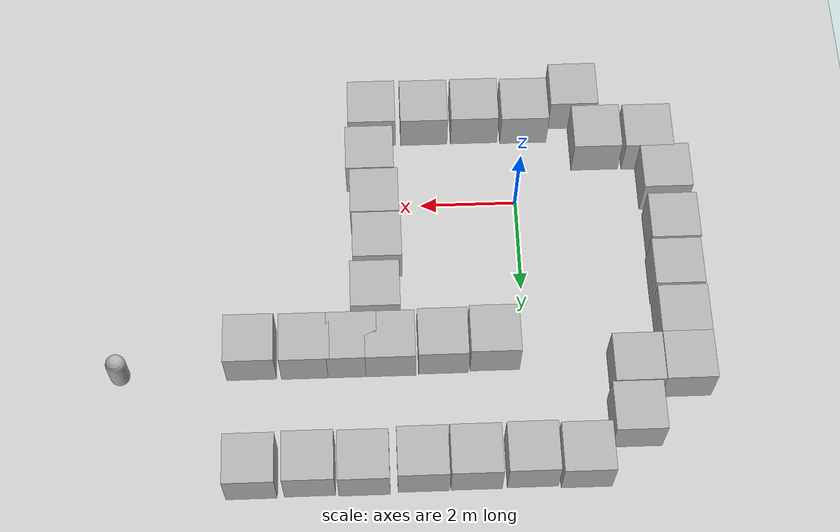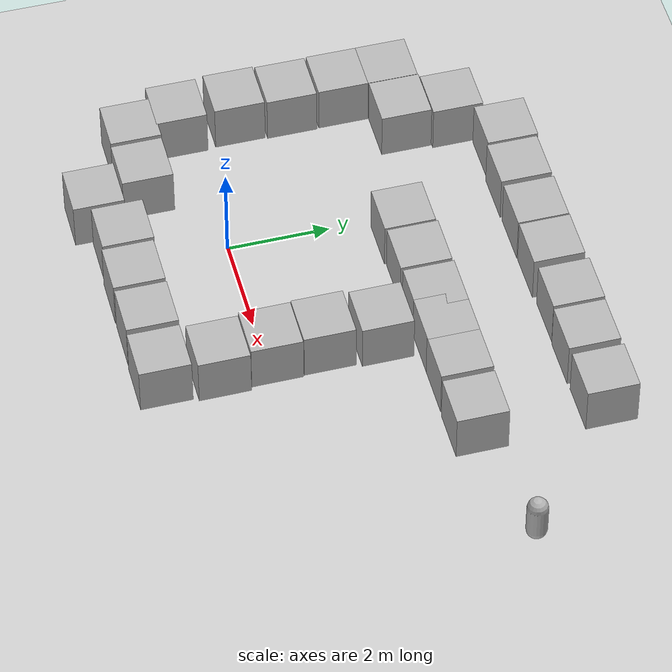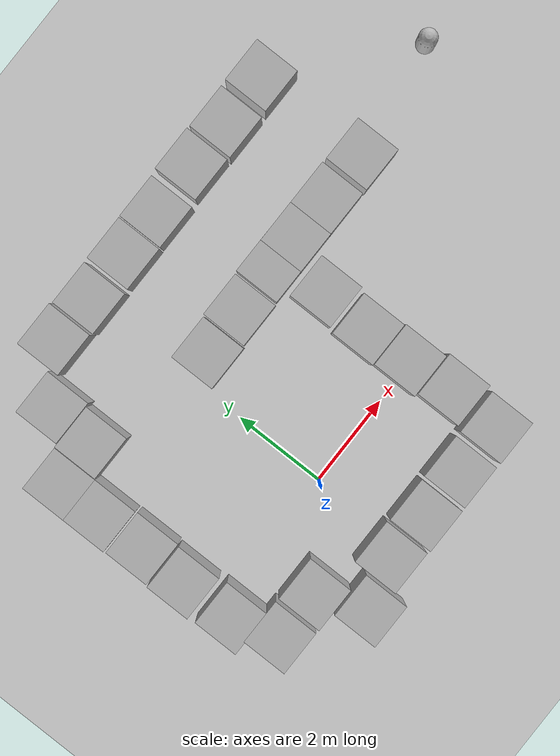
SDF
<sdf version='1.9'>
  <world name='empty'>
    <physics name='1ms' type='ignored'>
      <max_step_size>0.001</max_step_size>
      <real_time_factor>1</real_time_factor>
      <real_time_update_rate>1000</real_time_update_rate>
    </physics>
    <plugin name='gz::sim::systems::Physics' filename='ignition-gazebo-physics-system'/>
    <plugin name='gz::sim::systems::UserCommands' filename='ignition-gazebo-user-commands-system'/>
    <plugin name='gz::sim::systems::SceneBroadcaster' filename='ignition-gazebo-scene-broadcaster-system'/>
    <plugin name='gz::sim::systems::Contact' filename='ignition-gazebo-contact-system'/>
    <gravity>0 0 -9.8</gravity>
    <magnetic_field>6e-06 2.3e-05 -4.2e-05</magnetic_field>
    <atmosphere type='adiabatic'/>
    <scene>
      <ambient>0.4 0.4 0.4 1</ambient>
      <background>0.7 0.7 0.7 1</background>
      <shadows>true</shadows>
    </scene>
    <model name='ground_plane'>
      <static>true</static>
      <link name='link'>
        <collision name='collision'>
          <geometry>
            <plane>
              <normal>0 0 1</normal>
              <size>100 100</size>
            </plane>
          </geometry>
          <surface>
            <friction>
              <ode/>
            </friction>
            <bounce/>
            <contact/>
          </surface>
        </collision>
        <visual name='visual'>
          <geometry>
            <plane>
              <normal>0 0 1</normal>
              <size>100 100</size>
            </plane>
          </geometry>
          <material>
            <ambient>0.8 0.8 0.8 1</ambient>
            <diffuse>0.8 0.8 0.8 1</diffuse>
            <specular>0.8 0.8 0.8 1</specular>
          </material>
        </visual>
        <pose>0 0 0 0 -0 0</pose>
        <inertial>
          <pose>0 0 0 0 -0 0</pose>
          <mass>1</mass>
          <inertia>
            <ixx>1</ixx>
            <ixy>0</ixy>
            <ixz>0</ixz>
            <iyy>1</iyy>
            <iyz>0</iyz>
            <izz>1</izz>
          </inertia>
        </inertial>
        <enable_wind>false</enable_wind>
      </link>
      <pose>0 0 0 0 -0 0</pose>
      <self_collide>false</self_collide>
    </model>
    <model name='box'>
      <pose>4.44302 3.34276 0.5 0 -0 0</pose>
      <link name='box_link'>
        <inertial>
          <inertia>
            <ixx>0.16666</ixx>
            <ixy>0</ixy>
            <ixz>0</ixz>
            <iyy>0.16666</iyy>
            <iyz>0</iyz>
            <izz>0.16666</izz>
          </inertia>
          <mass>1</mass>
          <pose>0 0 0 0 -0 0</pose>
        </inertial>
        <collision name='box_collision'>
          <geometry>
            <box>
              <size>1 1 1</size>
            </box>
          </geometry>
          <surface>
            <friction>
              <ode/>
            </friction>
            <bounce/>
            <contact/>
          </surface>
        </collision>
        <visual name='box_visual'>
          <geometry>
            <box>
              <size>1 1 1</size>
            </box>
          </geometry>
          <material>
            <ambient>0.3 0.3 0.3 1</ambient>
            <diffuse>0.7 0.7 0.7 1</diffuse>
            <specular>1 1 1 1</specular>
          </material>
        </visual>
        <pose>0 0 0 0 -0 0</pose>
        <enable_wind>false</enable_wind>
      </link>
      <static>false</static>
      <self_collide>false</self_collide>
    </model>
    <model name='box_0'>
      <pose>3.50593 3.34317 0.5 0 -0 0</pose>
      <link name='box_link'>
        <inertial>
          <inertia>
            <ixx>0.16666</ixx>
            <ixy>0</ixy>
            <ixz>0</ixz>
            <iyy>0.16666</iyy>
            <iyz>0</iyz>
            <izz>0.16666</izz>
          </inertia>
          <mass>1</mass>
          <pose>0 0 0 0 -0 0</pose>
        </inertial>
        <collision name='box_collision'>
          <geometry>
            <box>
              <size>1 1 1</size>
            </box>
          </geometry>
          <surface>
            <friction>
              <ode/>
            </friction>
            <bounce/>
            <contact/>
          </surface>
        </collision>
        <visual name='box_visual'>
          <geometry>
            <box>
              <size>1 1 1</size>
            </box>
          </geometry>
          <material>
            <ambient>0.3 0.3 0.3 1</ambient>
            <diffuse>0.7 0.7 0.7 1</diffuse>
            <specular>1 1 1 1</specular>
          </material>
        </visual>
        <pose>0 0 0 0 -0 0</pose>
        <enable_wind>false</enable_wind>
      </link>
      <static>false</static>
      <self_collide>false</self_collide>
    </model>
    <model name='box_1'>
      <pose>2.74325 3.3445 0.5 0 -0 0</pose>
      <link name='box_link'>
        <inertial>
          <inertia>
            <ixx>0.16666</ixx>
            <ixy>0</ixy>
            <ixz>0</ixz>
            <iyy>0.16666</iyy>
            <iyz>0</iyz>
            <izz>0.16666</izz>
          </inertia>
          <mass>1</mass>
          <pose>0 0 0 0 -0 0</pose>
        </inertial>
        <collision name='box_collision'>
          <geometry>
            <box>
              <size>1 1 1</size>
            </box>
          </geometry>
          <surface>
            <friction>
              <ode/>
            </friction>
            <bounce/>
            <contact/>
          </surface>
        </collision>
        <visual name='box_visual'>
          <geometry>
            <box>
              <size>1 1 1</size>
            </box>
          </geometry>
          <material>
            <ambient>0.3 0.3 0.3 1</ambient>
            <diffuse>0.7 0.7 0.7 1</diffuse>
            <specular>1 1 1 1</specular>
          </material>
        </visual>
        <pose>0 0 0 0 -0 0</pose>
        <enable_wind>false</enable_wind>
      </link>
      <static>false</static>
      <self_collide>false</self_collide>
    </model>
    <model name='box_2'>
      <pose>1.6874 3.3226 0.5 0 -0 0</pose>
      <link name='box_link'>
        <inertial>
          <inertia>
            <ixx>0.16666</ixx>
            <ixy>0</ixy>
            <ixz>0</ixz>
            <iyy>0.16666</iyy>
            <iyz>0</iyz>
            <izz>0.16666</izz>
          </inertia>
          <mass>1</mass>
          <pose>0 0 0 0 -0 0</pose>
        </inertial>
        <collision name='box_collision'>
          <geometry>
            <box>
              <size>1 1 1</size>
            </box>
          </geometry>
          <surface>
            <friction>
              <ode/>
            </friction>
            <bounce/>
            <contact/>
          </surface>
        </collision>
        <visual name='box_visual'>
          <geometry>
            <box>
              <size>1 1 1</size>
            </box>
          </geometry>
          <material>
            <ambient>0.3 0.3 0.3 1</ambient>
            <diffuse>0.7 0.7 0.7 1</diffuse>
            <specular>1 1 1 1</specular>
          </material>
        </visual>
        <pose>0 0 0 0 -0 0</pose>
        <enable_wind>false</enable_wind>
      </link>
      <static>false</static>
      <self_collide>false</self_collide>
    </model>
    <model name='box_3'>
      <pose>0.649143 3.2912 0.5 0 -0 0</pose>
      <link name='box_link'>
        <inertial>
          <inertia>
            <ixx>0.16666</ixx>
            <ixy>0</ixy>
            <ixz>0</ixz>
            <iyy>0.16666</iyy>
            <iyz>0</iyz>
            <izz>0.16666</izz>
          </inertia>
          <mass>1</mass>
          <pose>0 0 0 0 -0 0</pose>
        </inertial>
        <collision name='box_collision'>
          <geometry>
            <box>
              <size>1 1 1</size>
            </box>
          </geometry>
          <surface>
            <friction>
              <ode/>
            </friction>
            <bounce/>
            <contact/>
          </surface>
        </collision>
        <visual name='box_visual'>
          <geometry>
            <box>
              <size>1 1 1</size>
            </box>
          </geometry>
          <material>
            <ambient>0.3 0.3 0.3 1</ambient>
            <diffuse>0.7 0.7 0.7 1</diffuse>
            <specular>1 1 1 1</specular>
          </material>
        </visual>
        <pose>0 0 0 0 -0 0</pose>
        <enable_wind>false</enable_wind>
      </link>
      <static>false</static>
      <self_collide>false</self_collide>
    </model>
    <model name='box_4'>
      <pose>-1.74437 -1.25826 0.5 0 -0 0</pose>
      <link name='box_link'>
        <inertial>
          <inertia>
            <ixx>0.16666</ixx>
            <ixy>0</ixy>
            <ixz>0</ixz>
            <iyy>0.16666</iyy>
            <iyz>0</iyz>
            <izz>0.16666</izz>
          </inertia>
          <mass>1</mass>
          <pose>0 0 0 0 -0 0</pose>
        </inertial>
        <collision name='box_collision'>
          <geometry>
            <box>
              <size>1 1 1</size>
            </box>
          </geometry>
          <surface>
            <friction>
              <ode/>
            </friction>
            <bounce/>
            <contact/>
          </surface>
        </collision>
        <visual name='box_visual'>
          <geometry>
            <box>
              <size>1 1 1</size>
            </box>
          </geometry>
          <material>
            <ambient>0.3 0.3 0.3 1</ambient>
            <diffuse>0.7 0.7 0.7 1</diffuse>
            <specular>1 1 1 1</specular>
          </material>
        </visual>
        <pose>0 0 0 0 -0 0</pose>
        <enable_wind>false</enable_wind>
      </link>
      <static>false</static>
      <self_collide>false</self_collide>
    </model>
    <model name='box_5'>
      <pose>-2.81881 -1.2439 0.5 0 -0 0</pose>
      <link name='box_link'>
        <inertial>
          <inertia>
            <ixx>0.16666</ixx>
            <ixy>0</ixy>
            <ixz>0</ixz>
            <iyy>0.16666</iyy>
            <iyz>0</iyz>
            <izz>0.16666</izz>
          </inertia>
          <mass>1</mass>
          <pose>0 0 0 0 -0 0</pose>
        </inertial>
        <collision name='box_collision'>
          <geometry>
            <box>
              <size>1 1 1</size>
            </box>
          </geometry>
          <surface>
            <friction>
              <ode/>
            </friction>
            <bounce/>
            <contact/>
          </surface>
        </collision>
        <visual name='box_visual'>
          <geometry>
            <box>
              <size>1 1 1</size>
            </box>
          </geometry>
          <material>
            <ambient>0.3 0.3 0.3 1</ambient>
            <diffuse>0.7 0.7 0.7 1</diffuse>
            <specular>1 1 1 1</specular>
          </material>
        </visual>
        <pose>0 0 0 0 -0 0</pose>
        <enable_wind>false</enable_wind>
      </link>
      <static>false</static>
      <self_collide>false</self_collide>
    </model>
    <model name='box_6'>
      <pose>3.01104 2.22576 0.5 0 -0 0</pose>
      <link name='box_link'>
        <inertial>
          <inertia>
            <ixx>0.16666</ixx>
            <ixy>0</ixy>
            <ixz>0</ixz>
            <iyy>0.16666</iyy>
            <iyz>0</iyz>
            <izz>0.16666</izz>
          </inertia>
          <mass>1</mass>
          <pose>0 0 0 0 -0 0</pose>
        </inertial>
        <collision name='box_collision'>
          <geometry>
            <box>
              <size>1 1 1</size>
            </box>
          </geometry>
          <surface>
            <friction>
              <ode/>
            </friction>
            <bounce/>
            <contact/>
          </surface>
        </collision>
        <visual name='box_visual'>
          <geometry>
            <box>
              <size>1 1 1</size>
            </box>
          </geometry>
          <material>
            <ambient>0.3 0.3 0.3 1</ambient>
            <diffuse>0.7 0.7 0.7 1</diffuse>
            <specular>1 1 1 1</specular>
          </material>
        </visual>
        <pose>0 0 0 0 -0 0</pose>
        <enable_wind>false</enable_wind>
      </link>
      <static>false</static>
      <self_collide>false</self_collide>
    </model>
    <model name='box_7'>
      <pose>2.94721 1.12499 0.5 0 -0 0</pose>
      <link name='box_link'>
        <inertial>
          <inertia>
            <ixx>0.16666</ixx>
            <ixy>0</ixy>
            <ixz>0</ixz>
            <iyy>0.16666</iyy>
            <iyz>0</iyz>
            <izz>0.16666</izz>
          </inertia>
          <mass>1</mass>
          <pose>0 0 0 0 -0 0</pose>
        </inertial>
        <collision name='box_collision'>
          <geometry>
            <box>
              <size>1 1 1</size>
            </box>
          </geometry>
          <surface>
            <friction>
              <ode/>
            </friction>
            <bounce/>
            <contact/>
          </surface>
        </collision>
        <visual name='box_visual'>
          <geometry>
            <box>
              <size>1 1 1</size>
            </box>
          </geometry>
          <material>
            <ambient>0.3 0.3 0.3 1</ambient>
            <diffuse>0.7 0.7 0.7 1</diffuse>
            <specular>1 1 1 1</specular>
          </material>
        </visual>
        <pose>0 0 0 0 -0 0</pose>
        <enable_wind>false</enable_wind>
      </link>
      <static>false</static>
      <self_collide>false</self_collide>
    </model>
    <model name='box_8'>
      <pose>2.97711 0.109561 0.5 0 -0 0</pose>
      <link name='box_link'>
        <inertial>
          <inertia>
            <ixx>0.16666</ixx>
            <ixy>0</ixy>
            <ixz>0</ixz>
            <iyy>0.16666</iyy>
            <iyz>0</iyz>
            <izz>0.16666</izz>
          </inertia>
          <mass>1</mass>
          <pose>0 0 0 0 -0 0</pose>
        </inertial>
        <collision name='box_collision'>
          <geometry>
            <box>
              <size>1 1 1</size>
            </box>
          </geometry>
          <surface>
            <friction>
              <ode/>
            </friction>
            <bounce/>
            <contact/>
          </surface>
        </collision>
        <visual name='box_visual'>
          <geometry>
            <box>
              <size>1 1 1</size>
            </box>
          </geometry>
          <material>
            <ambient>0.3 0.3 0.3 1</ambient>
            <diffuse>0.7 0.7 0.7 1</diffuse>
            <specular>1 1 1 1</specular>
          </material>
        </visual>
        <pose>0 0 0 0 -0 0</pose>
        <enable_wind>false</enable_wind>
      </link>
      <static>false</static>
      <self_collide>false</self_collide>
    </model>
    <model name='box_9'>
      <pose>3.05324 -0.911578 0.5 0 -0 0</pose>
      <link name='box_link'>
        <inertial>
          <inertia>
            <ixx>0.16666</ixx>
            <ixy>0</ixy>
            <ixz>0</ixz>
            <iyy>0.16666</iyy>
            <iyz>0</iyz>
            <izz>0.16666</izz>
          </inertia>
          <mass>1</mass>
          <pose>0 0 0 0 -0 0</pose>
        </inertial>
        <collision name='box_collision'>
          <geometry>
            <box>
              <size>1 1 1</size>
            </box>
          </geometry>
          <surface>
            <friction>
              <ode/>
            </friction>
            <bounce/>
            <contact/>
          </surface>
        </collision>
        <visual name='box_visual'>
          <geometry>
            <box>
              <size>1 1 1</size>
            </box>
          </geometry>
          <material>
            <ambient>0.3 0.3 0.3 1</ambient>
            <diffuse>0.7 0.7 0.7 1</diffuse>
            <specular>1 1 1 1</specular>
          </material>
        </visual>
        <pose>0 0 0 0 -0 0</pose>
        <enable_wind>false</enable_wind>
      </link>
      <static>false</static>
      <self_collide>false</self_collide>
    </model>
    <model name='box_10'>
      <pose>2.9895 -2.01103 0.5 0 -0 0</pose>
      <link name='box_link'>
        <inertial>
          <inertia>
            <ixx>0.16666</ixx>
            <ixy>0</ixy>
            <ixz>0</ixz>
            <iyy>0.16666</iyy>
            <iyz>0</iyz>
            <izz>0.16666</izz>
          </inertia>
          <mass>1</mass>
          <pose>0 0 0 0 -0 0</pose>
        </inertial>
        <collision name='box_collision'>
          <geometry>
            <box>
              <size>1 1 1</size>
            </box>
          </geometry>
          <surface>
            <friction>
              <ode/>
            </friction>
            <bounce/>
            <contact/>
          </surface>
        </collision>
        <visual name='box_visual'>
          <geometry>
            <box>
              <size>1 1 1</size>
            </box>
          </geometry>
          <material>
            <ambient>0.3 0.3 0.3 1</ambient>
            <diffuse>0.7 0.7 0.7 1</diffuse>
            <specular>1 1 1 1</specular>
          </material>
        </visual>
        <pose>0 0 0 0 -0 0</pose>
        <enable_wind>false</enable_wind>
      </link>
      <static>false</static>
      <self_collide>false</self_collide>
    </model>
    <model name='box_11'>
      <pose>1.88003 -1.99715 0.5 0 -0 0</pose>
      <link name='box_link'>
        <inertial>
          <inertia>
            <ixx>0.16666</ixx>
            <ixy>0</ixy>
            <ixz>0</ixz>
            <iyy>0.16666</iyy>
            <iyz>0</iyz>
            <izz>0.16666</izz>
          </inertia>
          <mass>1</mass>
          <pose>0 0 0 0 -0 0</pose>
        </inertial>
        <collision name='box_collision'>
          <geometry>
            <box>
              <size>1 1 1</size>
            </box>
          </geometry>
          <surface>
            <friction>
              <ode/>
            </friction>
            <bounce/>
            <contact/>
          </surface>
        </collision>
        <visual name='box_visual'>
          <geometry>
            <box>
              <size>1 1 1</size>
            </box>
          </geometry>
          <material>
            <ambient>0.3 0.3 0.3 1</ambient>
            <diffuse>0.7 0.7 0.7 1</diffuse>
            <specular>1 1 1 1</specular>
          </material>
        </visual>
        <pose>0 0 0 0 -0 0</pose>
        <enable_wind>false</enable_wind>
      </link>
      <static>false</static>
      <self_collide>false</self_collide>
    </model>
    <model name='box_12'>
      <pose>0.803579 -2.0008 0.5 0 -0 0</pose>
      <link name='box_link'>
        <inertial>
          <inertia>
            <ixx>0.16666</ixx>
            <ixy>0</ixy>
            <ixz>0</ixz>
            <iyy>0.16666</iyy>
            <iyz>0</iyz>
            <izz>0.16666</izz>
          </inertia>
          <mass>1</mass>
          <pose>0 0 0 0 -0 0</pose>
        </inertial>
        <collision name='box_collision'>
          <geometry>
            <box>
              <size>1 1 1</size>
            </box>
          </geometry>
          <surface>
            <friction>
              <ode/>
            </friction>
            <bounce/>
            <contact/>
          </surface>
        </collision>
        <visual name='box_visual'>
          <geometry>
            <box>
              <size>1 1 1</size>
            </box>
          </geometry>
          <material>
            <ambient>0.3 0.3 0.3 1</ambient>
            <diffuse>0.7 0.7 0.7 1</diffuse>
            <specular>1 1 1 1</specular>
          </material>
        </visual>
        <pose>0 0 0 0 -0 0</pose>
        <enable_wind>false</enable_wind>
      </link>
      <static>false</static>
      <self_collide>false</self_collide>
    </model>
    <model name='box_13'>
      <pose>-0.258873 -1.97304 0.5 0 -0 0</pose>
      <link name='box_link'>
        <inertial>
          <inertia>
            <ixx>0.16666</ixx>
            <ixy>0</ixy>
            <ixz>0</ixz>
            <iyy>0.16666</iyy>
            <iyz>0</iyz>
            <izz>0.16666</izz>
          </inertia>
          <mass>1</mass>
          <pose>0 0 0 0 -0 0</pose>
        </inertial>
        <collision name='box_collision'>
          <geometry>
            <box>
              <size>1 1 1</size>
            </box>
          </geometry>
          <surface>
            <friction>
              <ode/>
            </friction>
            <bounce/>
            <contact/>
          </surface>
        </collision>
        <visual name='box_visual'>
          <geometry>
            <box>
              <size>1 1 1</size>
            </box>
          </geometry>
          <material>
            <ambient>0.3 0.3 0.3 1</ambient>
            <diffuse>0.7 0.7 0.7 1</diffuse>
            <specular>1 1 1 1</specular>
          </material>
        </visual>
        <pose>0 0 0 0 -0 0</pose>
        <enable_wind>false</enable_wind>
      </link>
      <static>false</static>
      <self_collide>false</self_collide>
    </model>
    <model name='box_14'>
      <pose>-1.32229 -2.30679 0.5 0 -0 0</pose>
      <link name='box_link'>
        <inertial>
          <inertia>
            <ixx>0.16666</ixx>
            <ixy>0</ixy>
            <ixz>0</ixz>
            <iyy>0.16666</iyy>
            <iyz>0</iyz>
            <izz>0.16666</izz>
          </inertia>
          <mass>1</mass>
          <pose>0 0 0 0 -0 0</pose>
        </inertial>
        <collision name='box_collision'>
          <geometry>
            <box>
              <size>1 1 1</size>
            </box>
          </geometry>
          <surface>
            <friction>
              <ode/>
            </friction>
            <bounce/>
            <contact/>
          </surface>
        </collision>
        <visual name='box_visual'>
          <geometry>
            <box>
              <size>1 1 1</size>
            </box>
          </geometry>
          <material>
            <ambient>0.3 0.3 0.3 1</ambient>
            <diffuse>0.7 0.7 0.7 1</diffuse>
            <specular>1 1 1 1</specular>
          </material>
        </visual>
        <pose>0 0 0 0 -0 0</pose>
        <enable_wind>false</enable_wind>
      </link>
      <static>false</static>
      <self_collide>false</self_collide>
    </model>
    <model name='box_15'>
      <pose>5.54159 3.33034 0.5 0 -0 0</pose>
      <link name='box_link'>
        <inertial>
          <inertia>
            <ixx>0.16666</ixx>
            <ixy>0</ixy>
            <ixz>0</ixz>
            <iyy>0.16666</iyy>
            <iyz>0</iyz>
            <izz>0.16666</izz>
          </inertia>
          <mass>1</mass>
          <pose>0 0 0 0 -0 0</pose>
        </inertial>
        <collision name='box_collision'>
          <geometry>
            <box>
              <size>1 1 1</size>
            </box>
          </geometry>
          <surface>
            <friction>
              <ode/>
            </friction>
            <bounce/>
            <contact/>
          </surface>
        </collision>
        <visual name='box_visual'>
          <geometry>
            <box>
              <size>1 1 1</size>
            </box>
          </geometry>
          <material>
            <ambient>0.3 0.3 0.3 1</ambient>
            <diffuse>0.7 0.7 0.7 1</diffuse>
            <specular>1 1 1 1</specular>
          </material>
        </visual>
        <pose>0 0 0 0 -0 0</pose>
        <enable_wind>false</enable_wind>
      </link>
      <static>false</static>
      <self_collide>false</self_collide>
    </model>
    <model name='box_16'>
      <pose>5.52273 5.81768 0.5 0 -0 0</pose>
      <link name='box_link'>
        <inertial>
          <inertia>
            <ixx>0.16666</ixx>
            <ixy>0</ixy>
            <ixz>0</ixz>
            <iyy>0.16666</iyy>
            <iyz>0</iyz>
            <izz>0.16666</izz>
          </inertia>
          <mass>1</mass>
          <pose>0 0 0 0 -0 0</pose>
        </inertial>
        <collision name='box_collision'>
          <geometry>
            <box>
              <size>1 1 1</size>
            </box>
          </geometry>
          <surface>
            <friction>
              <ode/>
            </friction>
            <bounce/>
            <contact/>
          </surface>
        </collision>
        <visual name='box_visual'>
          <geometry>
            <box>
              <size>1 1 1</size>
            </box>
          </geometry>
          <material>
            <ambient>0.3 0.3 0.3 1</ambient>
            <diffuse>0.7 0.7 0.7 1</diffuse>
            <specular>1 1 1 1</specular>
          </material>
        </visual>
        <pose>0 0 0 0 -0 0</pose>
        <enable_wind>false</enable_wind>
      </link>
      <static>false</static>
      <self_collide>false</self_collide>
    </model>
    <model name='box_17'>
      <pose>4.38616 5.80213 0.5 0 -0 0</pose>
      <link name='box_link'>
        <inertial>
          <inertia>
            <ixx>0.16666</ixx>
            <ixy>0</ixy>
            <ixz>0</ixz>
            <iyy>0.16666</iyy>
            <iyz>0</iyz>
            <izz>0.16666</izz>
          </inertia>
          <mass>1</mass>
          <pose>0 0 0 0 -0 0</pose>
        </inertial>
        <collision name='box_collision'>
          <geometry>
            <box>
              <size>1 1 1</size>
            </box>
          </geometry>
          <surface>
            <friction>
              <ode/>
            </friction>
            <bounce/>
            <contact/>
          </surface>
        </collision>
        <visual name='box_visual'>
          <geometry>
            <box>
              <size>1 1 1</size>
            </box>
          </geometry>
          <material>
            <ambient>0.3 0.3 0.3 1</ambient>
            <diffuse>0.7 0.7 0.7 1</diffuse>
            <specular>1 1 1 1</specular>
          </material>
        </visual>
        <pose>0 0 0 0 -0 0</pose>
        <enable_wind>false</enable_wind>
      </link>
      <static>false</static>
      <self_collide>false</self_collide>
    </model>
    <model name='box_18'>
      <pose>3.32717 5.81868 0.5 0 -0 0</pose>
      <link name='box_link'>
        <inertial>
          <inertia>
            <ixx>0.16666</ixx>
            <ixy>0</ixy>
            <ixz>0</ixz>
            <iyy>0.16666</iyy>
            <iyz>0</iyz>
            <izz>0.16666</izz>
          </inertia>
          <mass>1</mass>
          <pose>0 0 0 0 -0 0</pose>
        </inertial>
        <collision name='box_collision'>
          <geometry>
            <box>
              <size>1 1 1</size>
            </box>
          </geometry>
          <surface>
            <friction>
              <ode/>
            </friction>
            <bounce/>
            <contact/>
          </surface>
        </collision>
        <visual name='box_visual'>
          <geometry>
            <box>
              <size>1 1 1</size>
            </box>
          </geometry>
          <material>
            <ambient>0.3 0.3 0.3 1</ambient>
            <diffuse>0.7 0.7 0.7 1</diffuse>
            <specular>1 1 1 1</specular>
          </material>
        </visual>
        <pose>0 0 0 0 -0 0</pose>
        <enable_wind>false</enable_wind>
      </link>
      <static>false</static>
      <self_collide>false</self_collide>
    </model>
    <model name='box_19'>
      <pose>2.17586 5.78238 0.5 0 -0 0</pose>
      <link name='box_link'>
        <inertial>
          <inertia>
            <ixx>0.16666</ixx>
            <ixy>0</ixy>
            <ixz>0</ixz>
            <iyy>0.16666</iyy>
            <iyz>0</iyz>
            <izz>0.16666</izz>
          </inertia>
          <mass>1</mass>
          <pose>0 0 0 0 -0 0</pose>
        </inertial>
        <collision name='box_collision'>
          <geometry>
            <box>
              <size>1 1 1</size>
            </box>
          </geometry>
          <surface>
            <friction>
              <ode/>
            </friction>
            <bounce/>
            <contact/>
          </surface>
        </collision>
        <visual name='box_visual'>
          <geometry>
            <box>
              <size>1 1 1</size>
            </box>
          </geometry>
          <material>
            <ambient>0.3 0.3 0.3 1</ambient>
            <diffuse>0.7 0.7 0.7 1</diffuse>
            <specular>1 1 1 1</specular>
          </material>
        </visual>
        <pose>0 0 0 0 -0 0</pose>
        <enable_wind>false</enable_wind>
      </link>
      <static>false</static>
      <self_collide>false</self_collide>
    </model>
    <model name='box_20'>
      <pose>1.14526 5.7754 0.5 0 -0 0</pose>
      <link name='box_link'>
        <inertial>
          <inertia>
            <ixx>0.16666</ixx>
            <ixy>0</ixy>
            <ixz>0</ixz>
            <iyy>0.16666</iyy>
            <iyz>0</iyz>
            <izz>0.16666</izz>
          </inertia>
          <mass>1</mass>
          <pose>0 0 0 0 -0 0</pose>
        </inertial>
        <collision name='box_collision'>
          <geometry>
            <box>
              <size>1 1 1</size>
            </box>
          </geometry>
          <surface>
            <friction>
              <ode/>
            </friction>
            <bounce/>
            <contact/>
          </surface>
        </collision>
        <visual name='box_visual'>
          <geometry>
            <box>
              <size>1 1 1</size>
            </box>
          </geometry>
          <material>
            <ambient>0.3 0.3 0.3 1</ambient>
            <diffuse>0.7 0.7 0.7 1</diffuse>
            <specular>1 1 1 1</specular>
          </material>
        </visual>
        <pose>0 0 0 0 -0 0</pose>
        <enable_wind>false</enable_wind>
      </link>
      <static>false</static>
      <self_collide>false</self_collide>
    </model>
    <model name='box_21'>
      <pose>0.046961 5.76244 0.5 0 -0 0</pose>
      <link name='box_link'>
        <inertial>
          <inertia>
            <ixx>0.16666</ixx>
            <ixy>0</ixy>
            <ixz>0</ixz>
            <iyy>0.16666</iyy>
            <iyz>0</iyz>
            <izz>0.16666</izz>
          </inertia>
          <mass>1</mass>
          <pose>0 0 0 0 -0 0</pose>
        </inertial>
        <collision name='box_collision'>
          <geometry>
            <box>
              <size>1 1 1</size>
            </box>
          </geometry>
          <surface>
            <friction>
              <ode/>
            </friction>
            <bounce/>
            <contact/>
          </surface>
        </collision>
        <visual name='box_visual'>
          <geometry>
            <box>
              <size>1 1 1</size>
            </box>
          </geometry>
          <material>
            <ambient>0.3 0.3 0.3 1</ambient>
            <diffuse>0.7 0.7 0.7 1</diffuse>
            <specular>1 1 1 1</specular>
          </material>
        </visual>
        <pose>0 0 0 0 -0 0</pose>
        <enable_wind>false</enable_wind>
      </link>
      <static>false</static>
      <self_collide>false</self_collide>
    </model>
    <model name='box_22'>
      <pose>-1.00155 5.80051 0.5 0 -0 0</pose>
      <link name='box_link'>
        <inertial>
          <inertia>
            <ixx>0.16666</ixx>
            <ixy>0</ixy>
            <ixz>0</ixz>
            <iyy>0.16666</iyy>
            <iyz>0</iyz>
            <izz>0.16666</izz>
          </inertia>
          <mass>1</mass>
          <pose>0 0 0 0 -0 0</pose>
        </inertial>
        <collision name='box_collision'>
          <geometry>
            <box>
              <size>1 1 1</size>
            </box>
          </geometry>
          <surface>
            <friction>
              <ode/>
            </friction>
            <bounce/>
            <contact/>
          </surface>
        </collision>
        <visual name='box_visual'>
          <geometry>
            <box>
              <size>1 1 1</size>
            </box>
          </geometry>
          <material>
            <ambient>0.3 0.3 0.3 1</ambient>
            <diffuse>0.7 0.7 0.7 1</diffuse>
            <specular>1 1 1 1</specular>
          </material>
        </visual>
        <pose>0 0 0 0 -0 0</pose>
        <enable_wind>false</enable_wind>
      </link>
      <static>false</static>
      <self_collide>false</self_collide>
    </model>
    <model name='box_23'>
      <pose>-2.06009 5.00141 0.5 0 -0 0</pose>
      <link name='box_link'>
        <inertial>
          <inertia>
            <ixx>0.16666</ixx>
            <ixy>0</ixy>
            <ixz>0</ixz>
            <iyy>0.16666</iyy>
            <iyz>0</iyz>
            <izz>0.16666</izz>
          </inertia>
          <mass>1</mass>
          <pose>0 0 0 0 -0 0</pose>
        </inertial>
        <collision name='box_collision'>
          <geometry>
            <box>
              <size>1 1 1</size>
            </box>
          </geometry>
          <surface>
            <friction>
              <ode/>
            </friction>
            <bounce/>
            <contact/>
          </surface>
        </collision>
        <visual name='box_visual'>
          <geometry>
            <box>
              <size>1 1 1</size>
            </box>
          </geometry>
          <material>
            <ambient>0.3 0.3 0.3 1</ambient>
            <diffuse>0.7 0.7 0.7 1</diffuse>
            <specular>1 1 1 1</specular>
          </material>
        </visual>
        <pose>0 0 0 0 -0 0</pose>
        <enable_wind>false</enable_wind>
      </link>
      <static>false</static>
      <self_collide>false</self_collide>
    </model>
    <model name='box_24'>
      <pose>-2.13533 3.9874 0.5 0 -0 0</pose>
      <link name='box_link'>
        <inertial>
          <inertia>
            <ixx>0.16666</ixx>
            <ixy>0</ixy>
            <ixz>0</ixz>
            <iyy>0.16666</iyy>
            <iyz>0</iyz>
            <izz>0.16666</izz>
          </inertia>
          <mass>1</mass>
          <pose>0 0 0 0 -0 0</pose>
        </inertial>
        <collision name='box_collision'>
          <geometry>
            <box>
              <size>1 1 1</size>
            </box>
          </geometry>
          <surface>
            <friction>
              <ode/>
            </friction>
            <bounce/>
            <contact/>
          </surface>
        </collision>
        <visual name='box_visual'>
          <geometry>
            <box>
              <size>1 1 1</size>
            </box>
          </geometry>
          <material>
            <ambient>0.3 0.3 0.3 1</ambient>
            <diffuse>0.7 0.7 0.7 1</diffuse>
            <specular>1 1 1 1</specular>
          </material>
        </visual>
        <pose>0 0 0 0 -0 0</pose>
        <enable_wind>false</enable_wind>
      </link>
      <static>false</static>
      <self_collide>false</self_collide>
    </model>
    <model name='box_25'>
      <pose>-3.14395 3.97637 0.5 0 -0 0</pose>
      <link name='box_link'>
        <inertial>
          <inertia>
            <ixx>0.16666</ixx>
            <ixy>0</ixy>
            <ixz>0</ixz>
            <iyy>0.16666</iyy>
            <iyz>0</iyz>
            <izz>0.16666</izz>
          </inertia>
          <mass>1</mass>
          <pose>0 0 0 0 -0 0</pose>
        </inertial>
        <collision name='box_collision'>
          <geometry>
            <box>
              <size>1 1 1</size>
            </box>
          </geometry>
          <surface>
            <friction>
              <ode/>
            </friction>
            <bounce/>
            <contact/>
          </surface>
        </collision>
        <visual name='box_visual'>
          <geometry>
            <box>
              <size>1 1 1</size>
            </box>
          </geometry>
          <material>
            <ambient>0.3 0.3 0.3 1</ambient>
            <diffuse>0.7 0.7 0.7 1</diffuse>
            <specular>1 1 1 1</specular>
          </material>
        </visual>
        <pose>0 0 0 0 -0 0</pose>
        <enable_wind>false</enable_wind>
      </link>
      <static>false</static>
      <self_collide>false</self_collide>
    </model>
    <model name='box_26'>
      <pose>-3.14301 2.97662 0.5 0 -0 0</pose>
      <link name='box_link'>
        <inertial>
          <inertia>
            <ixx>0.16666</ixx>
            <ixy>0</ixy>
            <ixz>0</ixz>
            <iyy>0.16666</iyy>
            <iyz>0</iyz>
            <izz>0.16666</izz>
          </inertia>
          <mass>1</mass>
          <pose>0 0 0 0 -0 0</pose>
        </inertial>
        <collision name='box_collision'>
          <geometry>
            <box>
              <size>1 1 1</size>
            </box>
          </geometry>
          <surface>
            <friction>
              <ode/>
            </friction>
            <bounce/>
            <contact/>
          </surface>
        </collision>
        <visual name='box_visual'>
          <geometry>
            <box>
              <size>1 1 1</size>
            </box>
          </geometry>
          <material>
            <ambient>0.3 0.3 0.3 1</ambient>
            <diffuse>0.7 0.7 0.7 1</diffuse>
            <specular>1 1 1 1</specular>
          </material>
        </visual>
        <pose>0 0 0 0 -0 0</pose>
        <enable_wind>false</enable_wind>
      </link>
      <static>false</static>
      <self_collide>false</self_collide>
    </model>
    <model name='box_27'>
      <pose>-3.12546 1.93405 0.5 0 -0 0</pose>
      <link name='box_link'>
        <inertial>
          <inertia>
            <ixx>0.16666</ixx>
            <ixy>0</ixy>
            <ixz>0</ixz>
            <iyy>0.16666</iyy>
            <iyz>0</iyz>
            <izz>0.16666</izz>
          </inertia>
          <mass>1</mass>
          <pose>0 0 0 0 -0 0</pose>
        </inertial>
        <collision name='box_collision'>
          <geometry>
            <box>
              <size>1 1 1</size>
            </box>
          </geometry>
          <surface>
            <friction>
              <ode/>
            </friction>
            <bounce/>
            <contact/>
          </surface>
        </collision>
        <visual name='box_visual'>
          <geometry>
            <box>
              <size>1 1 1</size>
            </box>
          </geometry>
          <material>
            <ambient>0.3 0.3 0.3 1</ambient>
            <diffuse>0.7 0.7 0.7 1</diffuse>
            <specular>1 1 1 1</specular>
          </material>
        </visual>
        <pose>0 0 0 0 -0 0</pose>
        <enable_wind>false</enable_wind>
      </link>
      <static>false</static>
      <self_collide>false</self_collide>
    </model>
    <model name='box_28'>
      <pose>-3.11286 -0.269544 0.5 0 -0 0</pose>
      <link name='box_link'>
        <inertial>
          <inertia>
            <ixx>0.16666</ixx>
            <ixy>0</ixy>
            <ixz>0</ixz>
            <iyy>0.16666</iyy>
            <iyz>0</iyz>
            <izz>0.16666</izz>
          </inertia>
          <mass>1</mass>
          <pose>0 0 0 0 -0 0</pose>
        </inertial>
        <collision name='box_collision'>
          <geometry>
            <box>
              <size>1 1 1</size>
            </box>
          </geometry>
          <surface>
            <friction>
              <ode/>
            </friction>
            <bounce/>
            <contact/>
          </surface>
        </collision>
        <visual name='box_visual'>
          <geometry>
            <box>
              <size>1 1 1</size>
            </box>
          </geometry>
          <material>
            <ambient>0.3 0.3 0.3 1</ambient>
            <diffuse>0.7 0.7 0.7 1</diffuse>
            <specular>1 1 1 1</specular>
          </material>
        </visual>
        <pose>0 0 0 0 -0 0</pose>
        <enable_wind>false</enable_wind>
      </link>
      <static>false</static>
      <self_collide>false</self_collide>
    </model>
    <model name='box_29'>
      <pose>-3.15365 0.893642 0.5 0 -0 0</pose>
      <link name='box_link'>
        <inertial>
          <inertia>
            <ixx>0.16666</ixx>
            <ixy>0</ixy>
            <ixz>0</ixz>
            <iyy>0.16666</iyy>
            <iyz>0</iyz>
            <izz>0.16666</izz>
          </inertia>
          <mass>1</mass>
          <pose>0 0 0 0 -0 0</pose>
        </inertial>
        <collision name='box_collision'>
          <geometry>
            <box>
              <size>1 1 1</size>
            </box>
          </geometry>
          <surface>
            <friction>
              <ode/>
            </friction>
            <bounce/>
            <contact/>
          </surface>
        </collision>
        <visual name='box_visual'>
          <geometry>
            <box>
              <size>1 1 1</size>
            </box>
          </geometry>
          <material>
            <ambient>0.3 0.3 0.3 1</ambient>
            <diffuse>0.7 0.7 0.7 1</diffuse>
            <specular>1 1 1 1</specular>
          </material>
        </visual>
        <pose>0 0 0 0 -0 0</pose>
        <enable_wind>false</enable_wind>
      </link>
      <static>false</static>
      <self_collide>false</self_collide>
    </model>
    <model name='capsule'>
      <pose>8.15488 3.73785 0.5 0 -0 0</pose>
      <link name='capsule_link'>
        <inertial>
          <inertia>
            <ixx>0.074153999999999998</ixx>
            <ixy>0</ixy>
            <ixz>0</ixz>
            <iyy>0.074153999999999998</iyy>
            <iyz>0</iyz>
            <izz>0.018769000000000001</izz>
          </inertia>
          <mass>1</mass>
          <pose>0 0 0 0 -0 0</pose>
        </inertial>
        <collision name='capsule_collision'>
          <geometry>
            <capsule>
              <radius>0.20000000000000001</radius>
              <length>0.59999999999999998</length>
            </capsule>
          </geometry>
          <surface>
            <friction>
              <ode/>
            </friction>
            <bounce/>
            <contact/>
          </surface>
        </collision>
        <visual name='capsule_visual'>
          <geometry>
            <capsule>
              <radius>0.20000000000000001</radius>
              <length>0.59999999999999998</length>
            </capsule>
          </geometry>
          <material>
            <ambient>0.3 0.3 0.3 1</ambient>
            <diffuse>0.7 0.7 0.7 1</diffuse>
            <specular>1 1 1 1</specular>
          </material>
        </visual>
        <pose>0 0 0 0 -0 0</pose>
        <enable_wind>false</enable_wind>
      </link>
      <static>false</static>
      <self_collide>false</self_collide>
    </model>
    <light name='sun' type='directional'>
      <pose>0 0 10 0 -0 0</pose>
      <cast_shadows>true</cast_shadows>
      <intensity>1</intensity>
      <direction>-0.5 0.1 -0.9</direction>
      <diffuse>0.8 0.8 0.8 1</diffuse>
      <specular>0.2 0.2 0.2 1</specular>
      <attenuation>
        <range>1000</range>
        <linear>0.01</linear>
        <constant>0.90000000000000002</constant>
        <quadratic>0.001</quadratic>
      </attenuation>
      <spot>
        <inner_angle>0</inner_angle>
        <outer_angle>0</outer_angle>
        <falloff>0</falloff>
      </spot>
    </light>
  </world>
</sdf>
